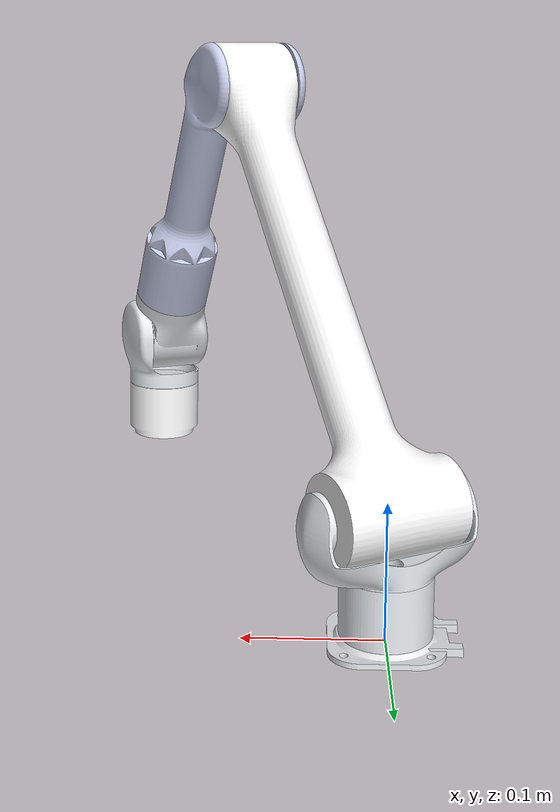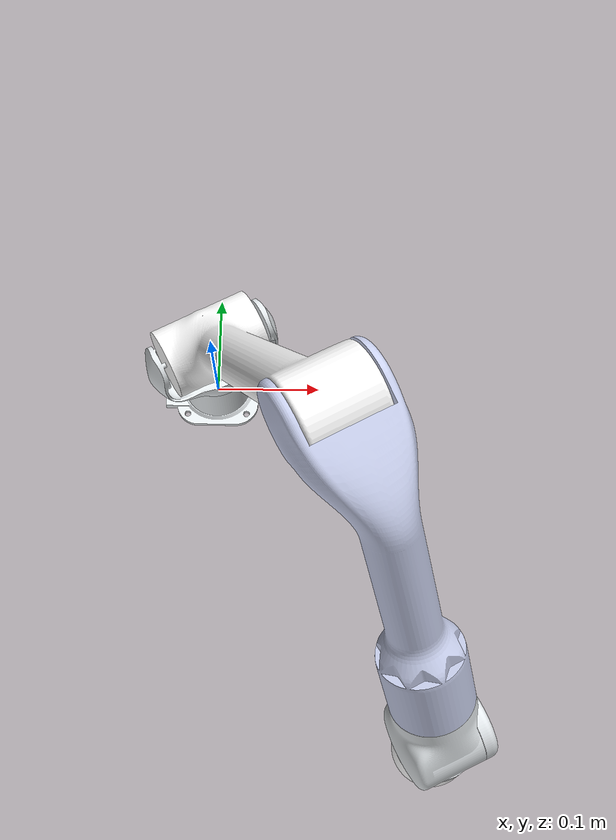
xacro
<?xml version="1.0" ?>
<robot name="uarm" xmlns:xacro="http://www.ros.org/wiki/xacro">

<xacro:include filename="$(find uarm_description)/urdf/materials.xacro" />
<xacro:include filename="$(find uarm_description)/urdf/uarm.trans" />
<xacro:include filename="$(find uarm_description)/urdf/uarm.gazebo" />
<link name="base_link">
  <inertial>
    <origin xyz="-0.0004039060931167339 -6.407971053725091e-18 0.024487705073211408" rpy="0 0 0"/>
    <mass value="1.3927055360150078"/>
    <inertia ixx="0.000723" iyy="0.000744" izz="0.000833" ixy="0.0" iyz="0.0" ixz="-1.2e-05"/>
  </inertial>
  <visual>
    <origin xyz="0 0 0" rpy="0 0 0"/>
    <geometry>
      <mesh filename="package://uarm_description/meshes/base_link.stl" scale="0.001 0.001 0.001"/>
    </geometry>
    <material name="opaque229234237"/>
  </visual>
  <collision>
    <origin xyz="0 0 0" rpy="0 0 0"/>
    <geometry>
      <mesh filename="package://uarm_description/meshes/base_link.stl" scale="0.001 0.001 0.001"/>
    </geometry>
  </collision>
</link>

<link name="UArm-V3.3-04-forearm-1_1">
  <inertial>
    <origin xyz="0.0038122881537523967 -0.017591531025747287 -0.033502698835065736" rpy="0 0 0"/>
    <mass value="1.9772613795452973"/>
    <inertia ixx="0.001476" iyy="0.001346" izz="0.001152" ixy="3.2e-05" iyz="-0.00015" ixz="7e-06"/>
  </inertial>
  <visual>
    <origin xyz="-0.182792 0.335124 -0.17366" rpy="0 0 0"/>
    <geometry>
      <mesh filename="package://uarm_description/meshes/UArm-V3.3-04-forearm-1_1.stl" scale="0.001 0.001 0.001"/>
    </geometry>
    <material name="opaque229234237"/>
  </visual>
  <collision>
    <origin xyz="-0.182792 0.335124 -0.17366" rpy="0 0 0"/>
    <geometry>
      <mesh filename="package://uarm_description/meshes/UArm-V3.3-04-forearm-1_1.stl" scale="0.001 0.001 0.001"/>
    </geometry>
  </collision>
</link>

<link name="UArm-V3.3-04-forearm-2_1">
  <inertial>
    <origin xyz="-0.0012479012215353968 -0.0006215145611418449 -0.014208886064236315" rpy="0 0 0"/>
    <mass value="0.27282683754197334"/>
    <inertia ixx="0.000218" iyy="0.000225" izz="0.000141" ixy="-5e-06" iyz="-3.2e-05" ixz="-6.5e-05"/>
  </inertial>
  <visual>
    <origin xyz="-0.212576 0.344882 -0.132334" rpy="0 0 0"/>
    <geometry>
      <mesh filename="package://uarm_description/meshes/UArm-V3.3-04-forearm-2_1.stl" scale="0.001 0.001 0.001"/>
    </geometry>
    <material name="opaque229234237"/>
  </visual>
  <collision>
    <origin xyz="-0.212576 0.344882 -0.132334" rpy="0 0 0"/>
    <geometry>
      <mesh filename="package://uarm_description/meshes/UArm-V3.3-04-forearm-2_1.stl" scale="0.001 0.001 0.001"/>
    </geometry>
  </collision>
</link>

<link name="UArm-V3.3-04-End_joint_1">
  <inertial>
    <origin xyz="0.0005025196001775534 0.0002301148893134597 -0.024431277048761142" rpy="0 0 0"/>
    <mass value="1.2583963140520196"/>
    <inertia ixx="0.000573" iyy="0.000573" izz="0.000645" ixy="0.0" iyz="-1e-06" ixz="-1e-06"/>
  </inertial>
  <visual>
    <origin xyz="-0.194243 0.35391 -0.08496" rpy="0 0 0"/>
    <geometry>
      <mesh filename="package://uarm_description/meshes/UArm-V3.3-04-End_joint_1.stl" scale="0.001 0.001 0.001"/>
    </geometry>
    <material name="opaque255255255"/>
  </visual>
  <collision>
    <origin xyz="-0.194243 0.35391 -0.08496" rpy="0 0 0"/>
    <geometry>
      <mesh filename="package://uarm_description/meshes/UArm-V3.3-04-End_joint_1.stl" scale="0.001 0.001 0.001"/>
    </geometry>
  </collision>
</link>

<link name="UArm-V3.3-04-Shoulder-simplified_1">
  <inertial>
    <origin xyz="-7.1068472140554e-05 -3.870375466439135e-05 0.02248308084889874" rpy="0 0 0"/>
    <mass value="0.46753821545024804"/>
    <inertia ixx="0.00047" iyy="0.000907" izz="0.001041" ixy="-0.000339" iyz="0.0" ixz="1e-06"/>
  </inertial>
  <visual>
    <origin xyz="-0.0 -0.0 -0.051" rpy="0 0 0"/>
    <geometry>
      <mesh filename="package://uarm_description/meshes/UArm-V3.3-04-Shoulder-simplified_1.stl" scale="0.001 0.001 0.001"/>
    </geometry>
    <material name="opaque229234237"/>
  </visual>
  <collision>
    <origin xyz="-0.0 -0.0 -0.051" rpy="0 0 0"/>
    <geometry>
      <mesh filename="package://uarm_description/meshes/UArm-V3.3-04-Shoulder-simplified_1.stl" scale="0.001 0.001 0.001"/>
    </geometry>
  </collision>
</link>

<link name="UArm-V3.3-04-Main_arm-simplified_1">
  <inertial>
    <origin xyz="0.08635140939645258 -0.06203573256215372 0.12123379003559859" rpy="0 0 0"/>
    <mass value="7.870271951825073"/>
    <inertia ixx="0.138549" iyy="0.108446" izz="0.061304" ixy="0.023549" iyz="0.063227" ixz="-0.034624"/>
  </inertial>
  <visual>
    <origin xyz="0.040383 0.022027 -0.095" rpy="0 0 0"/>
    <geometry>
      <mesh filename="package://uarm_description/meshes/UArm-V3.3-04-Main_arm-simplified_1.stl" scale="0.001 0.001 0.001"/>
    </geometry>
    <material name="opaque255255255"/>
  </visual>
  <collision>
    <origin xyz="0.040383 0.022027 -0.095" rpy="0 0 0"/>
    <geometry>
      <mesh filename="package://uarm_description/meshes/UArm-V3.3-04-Main_arm-simplified_1.stl" scale="0.001 0.001 0.001"/>
    </geometry>
  </collision>
</link>

<link name="UArm-V3.3-04-Secondary_arm_1">
  <inertial>
    <origin xyz="0.023015493103074852 -0.10518675181143666 -0.09465420726506335" rpy="0 0 0"/>
    <mass value="4.197386797183981"/>
    <inertia ixx="0.029832" iyy="0.024624" izz="0.012382" ixy="0.004171" iyz="-0.012152" ixz="0.006701"/>
  </inertial>
  <visual>
    <origin xyz="-0.130254 0.176151 -0.369599" rpy="0 0 0"/>
    <geometry>
      <mesh filename="package://uarm_description/meshes/UArm-V3.3-04-Secondary_arm_1.stl" scale="0.001 0.001 0.001"/>
    </geometry>
    <material name="opaque202209238"/>
  </visual>
  <collision>
    <origin xyz="-0.130254 0.176151 -0.369599" rpy="0 0 0"/>
    <geometry>
      <mesh filename="package://uarm_description/meshes/UArm-V3.3-04-Secondary_arm_1.stl" scale="0.001 0.001 0.001"/>
    </geometry>
  </collision>
</link>

<joint name="Rev4" type="continuous">
  <origin xyz="0.052538 -0.158973 -0.195939" rpy="0 0 0"/>
  <parent link="UArm-V3.3-04-Secondary_arm_1"/>
  <child link="UArm-V3.3-04-forearm-1_1"/>
  <axis xyz="0.222183 -0.407341 -0.885837"/>
</joint>

<joint name="Rev6" type="continuous">
  <origin xyz="0.029784 -0.009758 -0.041326" rpy="0 0 0"/>
  <parent link="UArm-V3.3-04-forearm-1_1"/>
  <child link="UArm-V3.3-04-forearm-2_1"/>
  <axis xyz="-0.897511 -0.440413 -0.022592"/>
</joint>

<joint name="Rev7" type="continuous">
  <origin xyz="-0.018333 -0.009028 -0.047374" rpy="0 0 0"/>
  <parent link="UArm-V3.3-04-forearm-2_1"/>
  <child link="UArm-V3.3-04-End_joint_1"/>
  <axis xyz="0.020554 0.009399 -0.999745"/>
</joint>

<joint name="Rev9" type="continuous">
  <origin xyz="0.0 0.0 0.051" rpy="0 0 0"/>
  <parent link="base_link"/>
  <child link="UArm-V3.3-04-Shoulder-simplified_1"/>
  <axis xyz="0.0 0.0 1.0"/>
</joint>

<joint name="Rev12" type="continuous">
  <origin xyz="-0.040383 -0.022027 0.044" rpy="0 0 0"/>
  <parent link="UArm-V3.3-04-Shoulder-simplified_1"/>
  <child link="UArm-V3.3-04-Main_arm-simplified_1"/>
  <axis xyz="0.877898 0.478847 -0.0"/>
</joint>

<joint name="Rev13" type="continuous">
  <origin xyz="0.170637 -0.154124 0.274599" rpy="0 0 0"/>
  <parent link="UArm-V3.3-04-Main_arm-simplified_1"/>
  <child link="UArm-V3.3-04-Secondary_arm_1"/>
  <axis xyz="0.877898 0.478847 -0.0"/>
</joint>

</robot>

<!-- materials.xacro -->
<robot name="uarm" xmlns:xacro="http://www.ros.org/wiki/xacro" >

<material name="silver_default">
  <color rgba="0.700 0.700 0.700 1.000"/>
</material>
<material name="opaque229234237">
  <color rgba="0.8980392156862745 0.9176470588235294 0.9294117647058824 1.0"/>
</material>
<material name="opaque255255255">
  <color rgba="1.0 1.0 1.0 1.0"/>
</material>
<material name="opaque202209238">
  <color rgba="0.792156862745098 0.8196078431372549 0.9333333333333333 1.0"/>
</material>

</robot>

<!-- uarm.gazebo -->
<robot name="uarm" xmlns:xacro="http://www.ros.org/wiki/xacro" >

<xacro:property name="body_color" value="Gazebo/Silver" />

<gazebo>
  <plugin name="control" filename="libgazebo_ros_control.so"/>
</gazebo>
<gazebo reference="base_link">
  <material>${body_color}</material>
  <mu1>0.2</mu1>
  <mu2>0.2</mu2>
  <selfCollide>true</selfCollide>
  <gravity>true</gravity>
</gazebo>

<gazebo reference="UArm-V3.3-04-forearm-1_1">
  <material>${body_color}</material>
  <mu1>0.2</mu1>
  <mu2>0.2</mu2>
  <selfCollide>true</selfCollide>
</gazebo>

<gazebo reference="UArm-V3.3-04-forearm-2_1">
  <material>${body_color}</material>
  <mu1>0.2</mu1>
  <mu2>0.2</mu2>
  <selfCollide>true</selfCollide>
</gazebo>

<gazebo reference="UArm-V3.3-04-End_joint_1">
  <material>${body_color}</material>
  <mu1>0.2</mu1>
  <mu2>0.2</mu2>
  <selfCollide>true</selfCollide>
</gazebo>

<gazebo reference="UArm-V3.3-04-Shoulder-simplified_1">
  <material>${body_color}</material>
  <mu1>0.2</mu1>
  <mu2>0.2</mu2>
  <selfCollide>true</selfCollide>
</gazebo>

<gazebo reference="UArm-V3.3-04-Main_arm-simplified_1">
  <material>${body_color}</material>
  <mu1>0.2</mu1>
  <mu2>0.2</mu2>
  <selfCollide>true</selfCollide>
</gazebo>

<gazebo reference="UArm-V3.3-04-Secondary_arm_1">
  <material>${body_color}</material>
  <mu1>0.2</mu1>
  <mu2>0.2</mu2>
  <selfCollide>true</selfCollide>
</gazebo>

</robot>
